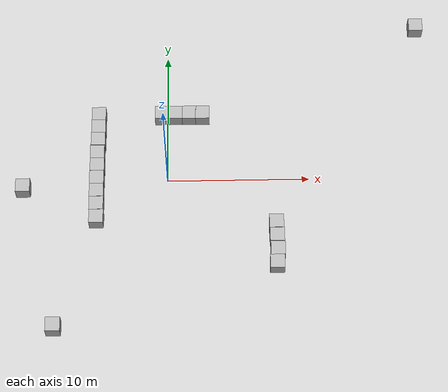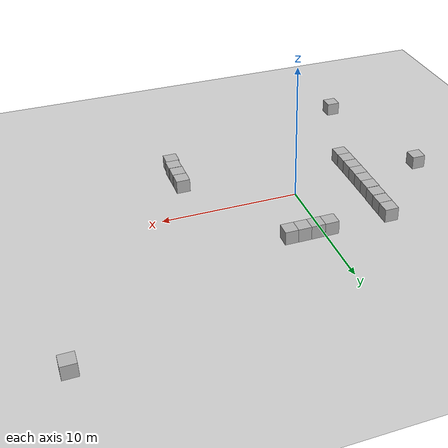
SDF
<sdf version="1.10">
 <world name="default">
  <physics type="ode">
   <max_step_size>0.0040000000000000001</max_step_size>
   <real_time_factor>1</real_time_factor>
   <real_time_update_rate>250</real_time_update_rate>
  </physics>
  <plugin name="gz::sim::systems::Physics" filename="gz-sim-physics-system"/>
  <plugin name="gz::sim::systems::UserCommands" filename="gz-sim-user-commands-system"/>
  <plugin name="gz::sim::systems::SceneBroadcaster" filename="gz-sim-scene-broadcaster-system"/>
  <plugin name="gz::sim::systems::Contact" filename="gz-sim-contact-system"/>
  <plugin name="gz::sim::systems::Imu" filename="gz-sim-imu-system"/>
  <plugin name="gz::sim::systems::AirPressure" filename="gz-sim-air-pressure-system"/>
  <plugin name="gz::sim::systems::ApplyLinkWrench" filename="gz-sim-apply-link-wrench-system"/>
  <plugin name="gz::sim::systems::NavSat" filename="gz-sim-navsat-system"/>
  <plugin name="gz::sim::systems::Sensors" filename="gz-sim-sensors-system">
   <render_engine>ogre2</render_engine>
  </plugin>
  <gravity>0 0 -9.8000000000000007</gravity>
  <magnetic_field>6.0000000000000002e-06 2.3e-05 -4.1999999999999998e-05</magnetic_field>
  <atmosphere type="adiabatic"/>
  <scene>
   <grid>false</grid>
   <ambient>0.400000006 0.400000006 0.400000006 1</ambient>
   <background>0.699999988 0.699999988 0.699999988 1</background>
   <shadows>true</shadows>
  </scene>
  <spherical_coordinates>
   <surface_model>EARTH_WGS84</surface_model>
   <world_frame_orientation>ENU</world_frame_orientation>
   <latitude_deg>47.397971057728974</latitude_deg>
   <longitude_deg>8.5461637398001464</longitude_deg>
   <elevation>0</elevation>
   <heading_deg>0</heading_deg>
   <altitude>0</altitude>
  </spherical_coordinates>
  <model name="ground_plane">
   <static>true</static>
   <link name="link">
    <collision name="collision">
     <geometry><plane><normal>0 0 1</normal><size>1 1</size></plane></geometry>
    </collision>
    <visual name="visual">
     <geometry><plane><normal>0 0 1</normal><size>100 100</size></plane></geometry>
     <material>
      <ambient>0.800000012 0.800000012 0.800000012 1</ambient>
      <diffuse>0.800000012 0.800000012 0.800000012 1</diffuse>
      <specular>0.800000012 0.800000012 0.800000012 1</specular>
     </material>
    </visual>
    <inertial>
     <mass>1</mass>
     <inertia><ixx>1</ixx><ixy>0</ixy><ixz>0</ixz><iyy>1</iyy><iyz>0</iyz><izz>1</izz></inertia>
    </inertial>
   </link>
  </model>
  <model name="box">
   <pose>7.5514879237790966 -6.6414686271693419 0.49999984319877283 3.13382003327622e-07 -1.3416773706367374e-11 7.9407502275060849e-07</pose>
   <link name="box_link">
    <inertial>
     <inertia><ixx>0.16666</ixx><ixy>0</ixy><ixz>0</ixz><iyy>0.16666</iyy><iyz>0</iyz><izz>0.16666</izz></inertia>
     <mass>1</mass>
    </inertial>
    <collision name="box_collision"><geometry><box><size>1 1 1</size></box></geometry></collision>
    <visual name="box_visual">
     <geometry><box><size>1 1 1</size></box></geometry>
     <material>
      <ambient>0.300000012 0.300000012 0.300000012 1</ambient>
      <diffuse>0.699999988 0.699999988 0.699999988 1</diffuse>
      <specular>1 1 1 1</specular>
     </material>
    </visual>
   </link>
   <static>false</static>
  </model>
  <model name="box_0">
   <pose>18.329105998608576 12.18853930524951 0.49999999687961683 4.6757305113087373e-20 1.1820331876185883e-20 1.574230987506306e-21</pose>
   <link name="box_link">
    <inertial>
     <inertia><ixx>0.16666</ixx><ixy>0</ixy><ixz>0</ixz><iyy>0.16666</iyy><iyz>0</iyz><izz>0.16666</izz></inertia>
     <mass>1</mass>
    </inertial>
    <collision name="box_collision"><geometry><box><size>1 1 1</size></box></geometry></collision>
    <visual name="box_visual">
     <geometry><box><size>1 1 1</size></box></geometry>
     <material>
      <ambient>0.300000012 0.300000012 0.300000012 1</ambient>
      <diffuse>0.699999988 0.699999988 0.699999988 1</diffuse>
      <specular>1 1 1 1</specular>
     </material>
    </visual>
   </link>
   <static>false</static>
  </model>
  <model name="box_1">
   <pose>-10.187712153615449 -0.61298334364752982 0.49999999687961683 4.6757305113087373e-20 1.1820331876185883e-20 1.574230987506306e-21</pose>
   <link name="box_link">
    <inertial>
     <inertia><ixx>0.16666</ixx><ixy>0</ixy><ixz>0</ixz><iyy>0.16666</iyy><iyz>0</iyz><izz>0.16666</izz></inertia>
     <mass>1</mass>
    </inertial>
    <collision name="box_collision"><geometry><box><size>1 1 1</size></box></geometry></collision>
    <visual name="box_visual">
     <geometry><box><size>1 1 1</size></box></geometry>
     <material>
      <ambient>0.300000012 0.300000012 0.300000012 1</ambient>
      <diffuse>0.699999988 0.699999988 0.699999988 1</diffuse>
      <specular>1 1 1 1</specular>
     </material>
    </visual>
   </link>
   <static>false</static>
  </model>
  <model name="box_2">
   <pose>-4.933492038040951 5.0147759532738378 0.49999999687961683 4.6757305113087373e-20 1.1820331876185883e-20 1.574230987506306e-21</pose>
   <link name="box_link">
    <inertial>
     <inertia><ixx>0.16666</ixx><ixy>0</ixy><ixz>0</ixz><iyy>0.16666</iyy><iyz>0</iyz><izz>0.16666</izz></inertia>
     <mass>1</mass>
    </inertial>
    <collision name="box_collision"><geometry><box><size>1 1 1</size></box></geometry></collision>
    <visual name="box_visual">
     <geometry><box><size>1 1 1</size></box></geometry>
     <material>
      <ambient>0.300000012 0.300000012 0.300000012 1</ambient>
      <diffuse>0.699999988 0.699999988 0.699999988 1</diffuse>
      <specular>1 1 1 1</specular>
     </material>
    </visual>
   </link>
   <static>false</static>
  </model>
  <model name="box_3">
   <pose>-7.7308622386540655 -11.019409014002056 0.49999999687961683 4.6757305113087373e-20 1.1820331876185883e-20 1.574230987506306e-21</pose>
   <link name="box_link">
    <inertial>
     <inertia><ixx>0.16666</ixx><ixy>0</ixy><ixz>0</ixz><iyy>0.16666</iyy><iyz>0</iyz><izz>0.16666</izz></inertia>
     <mass>1</mass>
    </inertial>
    <collision name="box_collision"><geometry><box><size>1 1 1</size></box></geometry></collision>
    <visual name="box_visual">
     <geometry><box><size>1 1 1</size></box></geometry>
     <material>
      <ambient>0.300000012 0.300000012 0.300000012 1</ambient>
      <diffuse>0.699999988 0.699999988 0.699999988 1</diffuse>
      <specular>1 1 1 1</specular>
     </material>
    </visual>
   </link>
   <static>false</static>
  </model>
  <model name="box_4">
   <pose>-0.40738657304393189 5.0517056209636353 0.49999984319699176 -2.4190675312208551e-11 -3.1351231653901534e-07 -2.40515596817766e-07</pose>
   <link name="box_link">
    <inertial>
     <inertia><ixx>0.16666</ixx><ixy>0</ixy><ixz>0</ixz><iyy>0.16666</iyy><iyz>0</iyz><izz>0.16666</izz></inertia>
     <mass>1</mass>
    </inertial>
    <collision name="box_collision"><geometry><box><size>1 1 1</size></box></geometry></collision>
    <visual name="box_visual">
     <geometry><box><size>1 1 1</size></box></geometry>
     <material>
      <ambient>0.300000012 0.300000012 0.300000012 1</ambient>
      <diffuse>0.699999988 0.699999988 0.699999988 1</diffuse>
      <specular>1 1 1 1</specular>
     </material>
    </visual>
   </link>
   <static>false</static>
  </model>
  <model name="box_5">
   <pose>0.59261294063517234 5.0425635155781787 0.49999984318340757 -2.8834986635599064e-11 -3.1348604098162751e-07 -2.443924125354497e-07</pose>
   <link name="box_link">
    <inertial>
     <inertia><ixx>0.16666</ixx><ixy>0</ixy><ixz>0</ixz><iyy>0.16666</iyy><iyz>0</iyz><izz>0.16666</izz></inertia>
     <mass>1</mass>
    </inertial>
    <collision name="box_collision"><geometry><box><size>1 1 1</size></box></geometry></collision>
    <visual name="box_visual">
     <geometry><box><size>1 1 1</size></box></geometry>
     <material>
      <ambient>0.300000012 0.300000012 0.300000012 1</ambient>
      <diffuse>0.699999988 0.699999988 0.699999988 1</diffuse>
      <specular>1 1 1 1</specular>
     </material>
    </visual>
   </link>
   <static>false</static>
  </model>
  <model name="box_6">
   <pose>1.5382503346694143 5.0418450990980173 0.49999984309577727 7.8663600292722688e-11 3.1316555111706673e-07 -2.4130040668191569e-07</pose>
   <link name="box_link">
    <inertial>
     <inertia><ixx>0.16666</ixx><ixy>0</ixy><ixz>0</ixz><iyy>0.16666</iyy><iyz>0</iyz><izz>0.16666</izz></inertia>
     <mass>1</mass>
    </inertial>
    <collision name="box_collision"><geometry><box><size>1 1 1</size></box></geometry></collision>
    <visual name="box_visual">
     <geometry><box><size>1 1 1</size></box></geometry>
     <material>
      <ambient>0.300000012 0.300000012 0.300000012 1</ambient>
      <diffuse>0.699999988 0.699999988 0.699999988 1</diffuse>
      <specular>1 1 1 1</specular>
     </material>
    </visual>
   </link>
   <static>false</static>
  </model>
  <model name="box_7">
   <pose>2.4852966101530152 5.0329577367562104 0.49999984321326557 4.1766243358771293e-11 3.135433801518807e-07 -2.4732885440559892e-07</pose>
   <link name="box_link">
    <inertial>
     <inertia><ixx>0.16666</ixx><ixy>0</ixy><ixz>0</ixz><iyy>0.16666</iyy><iyz>0</iyz><izz>0.16666</izz></inertia>
     <mass>1</mass>
    </inertial>
    <collision name="box_collision"><geometry><box><size>1 1 1</size></box></geometry></collision>
    <visual name="box_visual">
     <geometry><box><size>1 1 1</size></box></geometry>
     <material>
      <ambient>0.300000012 0.300000012 0.300000012 1</ambient>
      <diffuse>0.699999988 0.699999988 0.699999988 1</diffuse>
      <specular>1 1 1 1</specular>
     </material>
    </visual>
   </link>
   <static>false</static>
  </model>
  <model name="box_8">
   <pose>-4.9413934230972272 4.0049734219983151 0.49999999843196863 9.9660382642069981e-21 1.4924746632754187e-20 -5.8104853870912219e-21</pose>
   <link name="box_link">
    <inertial>
     <inertia><ixx>0.16666</ixx><ixy>0</ixy><ixz>0</ixz><iyy>0.16666</iyy><iyz>0</iyz><izz>0.16666</izz></inertia>
     <mass>1</mass>
    </inertial>
    <collision name="box_collision"><geometry><box><size>1 1 1</size></box></geometry></collision>
    <visual name="box_visual">
     <geometry><box><size>1 1 1</size></box></geometry>
     <material>
      <ambient>0.300000012 0.300000012 0.300000012 1</ambient>
      <diffuse>0.699999988 0.699999988 0.699999988 1</diffuse>
      <specular>1 1 1 1</specular>
     </material>
    </visual>
   </link>
   <static>false</static>
  </model>
  <model name="box_9">
   <pose>-4.9585851349248742 2.9833180239964707 0.49999999843196863 9.9660382642069981e-21 1.4924746632754187e-20 -5.8104853870912219e-21</pose>
   <link name="box_link">
    <inertial>
     <inertia><ixx>0.16666</ixx><ixy>0</ixy><ixz>0</ixz><iyy>0.16666</iyy><iyz>0</iyz><izz>0.16666</izz></inertia>
     <mass>1</mass>
    </inertial>
    <collision name="box_collision"><geometry><box><size>1 1 1</size></box></geometry></collision>
    <visual name="box_visual">
     <geometry><box><size>1 1 1</size></box></geometry>
     <material>
      <ambient>0.300000012 0.300000012 0.300000012 1</ambient>
      <diffuse>0.699999988 0.699999988 0.699999988 1</diffuse>
      <specular>1 1 1 1</specular>
     </material>
    </visual>
   </link>
   <static>false</static>
  </model>
  <model name="box_10">
   <pose>-4.9913555205681135 1.9520228505602335 0.49999984319489771 -2.8843902115247371e-08 8.449624912813675e-13 6.6540969334631156e-07</pose>
   <link name="box_link">
    <inertial>
     <inertia><ixx>0.16666</ixx><ixy>0</ixy><ixz>0</ixz><iyy>0.16666</iyy><iyz>0</iyz><izz>0.16666</izz></inertia>
     <mass>1</mass>
    </inertial>
    <collision name="box_collision"><geometry><box><size>1 1 1</size></box></geometry></collision>
    <visual name="box_visual">
     <geometry><box><size>1 1 1</size></box></geometry>
     <material>
      <ambient>0.300000012 0.300000012 0.300000012 1</ambient>
      <diffuse>0.699999988 0.699999988 0.699999988 1</diffuse>
      <specular>1 1 1 1</specular>
     </material>
    </visual>
   </link>
   <static>false</static>
  </model>
  <model name="box_11">
   <pose>-4.991356099124542 0.95202321424745007 0.49999984321637259 1.5723053614660285e-07 -8.6099497904570589e-11 6.7555154310099557e-07</pose>
   <link name="box_link">
    <inertial>
     <inertia><ixx>0.16666</ixx><ixy>0</ixy><ixz>0</ixz><iyy>0.16666</iyy><iyz>0</iyz><izz>0.16666</izz></inertia>
     <mass>1</mass>
    </inertial>
    <collision name="box_collision"><geometry><box><size>1 1 1</size></box></geometry></collision>
    <visual name="box_visual">
     <geometry><box><size>1 1 1</size></box></geometry>
     <material>
      <ambient>0.300000012 0.300000012 0.300000012 1</ambient>
      <diffuse>0.699999988 0.699999988 0.699999988 1</diffuse>
      <specular>1 1 1 1</specular>
     </material>
    </visual>
   </link>
   <static>false</static>
  </model>
  <model name="box_12">
   <pose>-5.007818108501719 -0.052418965170712782 0.49999984319482321 -4.4115148830485003e-08 3.6890666270294418e-13 7.2175246369980639e-07</pose>
   <link name="box_link">
    <inertial>
     <inertia><ixx>0.16666</ixx><ixy>0</ixy><ixz>0</ixz><iyy>0.16666</iyy><iyz>0</iyz><izz>0.16666</izz></inertia>
     <mass>1</mass>
    </inertial>
    <collision name="box_collision"><geometry><box><size>1 1 1</size></box></geometry></collision>
    <visual name="box_visual">
     <geometry><box><size>1 1 1</size></box></geometry>
     <material>
      <ambient>0.300000012 0.300000012 0.300000012 1</ambient>
      <diffuse>0.699999988 0.699999988 0.699999988 1</diffuse>
      <specular>1 1 1 1</specular>
     </material>
    </visual>
   </link>
   <static>false</static>
  </model>
  <model name="box_13">
   <pose>-5.0078187527488964 -1.0524183610616449 0.49999984320207419 1.5705594383184533e-07 -2.4963407787401075e-12 7.4440344846913199e-07</pose>
   <link name="box_link">
    <inertial>
     <inertia><ixx>0.16666</ixx><ixy>0</ixy><ixz>0</ixz><iyy>0.16666</iyy><iyz>0</iyz><izz>0.16666</izz></inertia>
     <mass>1</mass>
    </inertial>
    <collision name="box_collision"><geometry><box><size>1 1 1</size></box></geometry></collision>
    <visual name="box_visual">
     <geometry><box><size>1 1 1</size></box></geometry>
     <material>
      <ambient>0.300000012 0.300000012 0.300000012 1</ambient>
      <diffuse>0.699999988 0.699999988 0.699999988 1</diffuse>
      <specular>1 1 1 1</specular>
     </material>
    </visual>
   </link>
   <static>false</static>
  </model>
  <model name="box_14">
   <pose>-5.0078182007276428 -2.056776305324445 0.49999999843196863 9.9660382642069981e-21 1.4924746632754187e-20 -5.8104853870912219e-21</pose>
   <link name="box_link">
    <inertial>
     <inertia><ixx>0.16666</ixx><ixy>0</ixy><ixz>0</ixz><iyy>0.16666</iyy><iyz>0</iyz><izz>0.16666</izz></inertia>
     <mass>1</mass>
    </inertial>
    <collision name="box_collision"><geometry><box><size>1 1 1</size></box></geometry></collision>
    <visual name="box_visual">
     <geometry><box><size>1 1 1</size></box></geometry>
     <material>
      <ambient>0.300000012 0.300000012 0.300000012 1</ambient>
      <diffuse>0.699999988 0.699999988 0.699999988 1</diffuse>
      <specular>1 1 1 1</specular>
     </material>
    </visual>
   </link>
   <static>false</static>
  </model>
  <model name="box_15">
   <pose>-4.9913559188661765 -3.0598963598533997 0.49999999843196863 9.9660382642069981e-21 1.4924746632754187e-20 -5.8104853870912219e-21</pose>
   <link name="box_link">
    <inertial>
     <inertia><ixx>0.16666</ixx><ixy>0</ixy><ixz>0</ixz><iyy>0.16666</iyy><iyz>0</iyz><izz>0.16666</izz></inertia>
     <mass>1</mass>
    </inertial>
    <collision name="box_collision"><geometry><box><size>1 1 1</size></box></geometry></collision>
    <visual name="box_visual">
     <geometry><box><size>1 1 1</size></box></geometry>
     <material>
      <ambient>0.300000012 0.300000012 0.300000012 1</ambient>
      <diffuse>0.699999988 0.699999988 0.699999988 1</diffuse>
      <specular>1 1 1 1</specular>
     </material>
    </visual>
   </link>
   <static>false</static>
  </model>
  <model name="box_16">
   <pose>7.616895864285401 -5.6564974038168936 0.49999984319195384 -3.1339561928310385e-07 1.2105501426251176e-11 -2.3129063469980475e-07</pose>
   <link name="box_link">
    <inertial>
     <inertia><ixx>0.16666</ixx><ixy>0</ixy><ixz>0</ixz><iyy>0.16666</iyy><iyz>0</iyz><izz>0.16666</izz></inertia>
     <mass>1</mass>
    </inertial>
    <collision name="box_collision"><geometry><box><size>1 1 1</size></box></geometry></collision>
    <visual name="box_visual">
     <geometry><box><size>1 1 1</size></box></geometry>
     <material>
      <ambient>0.300000012 0.300000012 0.300000012 1</ambient>
      <diffuse>0.699999988 0.699999988 0.699999988 1</diffuse>
      <specular>1 1 1 1</specular>
     </material>
    </visual>
   </link>
   <static>false</static>
  </model>
  <model name="box_17">
   <pose>7.5902192637741805 -4.6330632273080719 0.49999999843196863 9.9660382642069981e-21 1.4924746632754187e-20 -5.8104853870912219e-21</pose>
   <link name="box_link">
    <inertial>
     <inertia><ixx>0.16666</ixx><ixy>0</ixy><ixz>0</ixz><iyy>0.16666</iyy><iyz>0</iyz><izz>0.16666</izz></inertia>
     <mass>1</mass>
    </inertial>
    <collision name="box_collision"><geometry><box><size>1 1 1</size></box></geometry></collision>
    <visual name="box_visual">
     <geometry><box><size>1 1 1</size></box></geometry>
     <material>
      <ambient>0.300000012 0.300000012 0.300000012 1</ambient>
      <diffuse>0.699999988 0.699999988 0.699999988 1</diffuse>
      <specular>1 1 1 1</specular>
     </material>
    </visual>
   </link>
   <static>false</static>
  </model>
  <model name="box_18">
   <pose>7.5698964146925265 -3.6249638446827301 0.49999999843196863 0 0 0</pose>
   <link name="box_link">
    <inertial>
     <inertia><ixx>0.16666</ixx><ixy>0</ixy><ixz>0</ixz><iyy>0.16666</iyy><iyz>0</iyz><izz>0.16666</izz></inertia>
     <mass>1</mass>
    </inertial>
    <collision name="box_collision"><geometry><box><size>1 1 1</size></box></geometry></collision>
    <visual name="box_visual">
     <geometry><box><size>1 1 1</size></box></geometry>
     <material>
      <ambient>0.300000012 0.300000012 0.300000012 1</ambient>
      <diffuse>0.699999988 0.699999988 0.699999988 1</diffuse>
      <specular>1 1 1 1</specular>
     </material>
    </visual>
   </link>
   <static>false</static>
  </model>
  <light name="sunUTC" type="directional">
   <pose>0 0 500 0 0 0</pose>
   <intensity>1</intensity>
   <direction>0.001 0.625 -0.78000000000000003</direction>
   <diffuse>0.903999984 0.903999984 0.903999984 1</diffuse>
   <specular>0.270999998 0.270999998 0.270999998 1</specular>
   <attenuation><range>2000</range><linear>0</linear><constant>1</constant><quadratic>0</quadratic></attenuation>
   <spot><inner_angle>0</inner_angle><outer_angle>0</outer_angle><falloff>0</falloff></spot>
  </light>
 </world>
</sdf>
